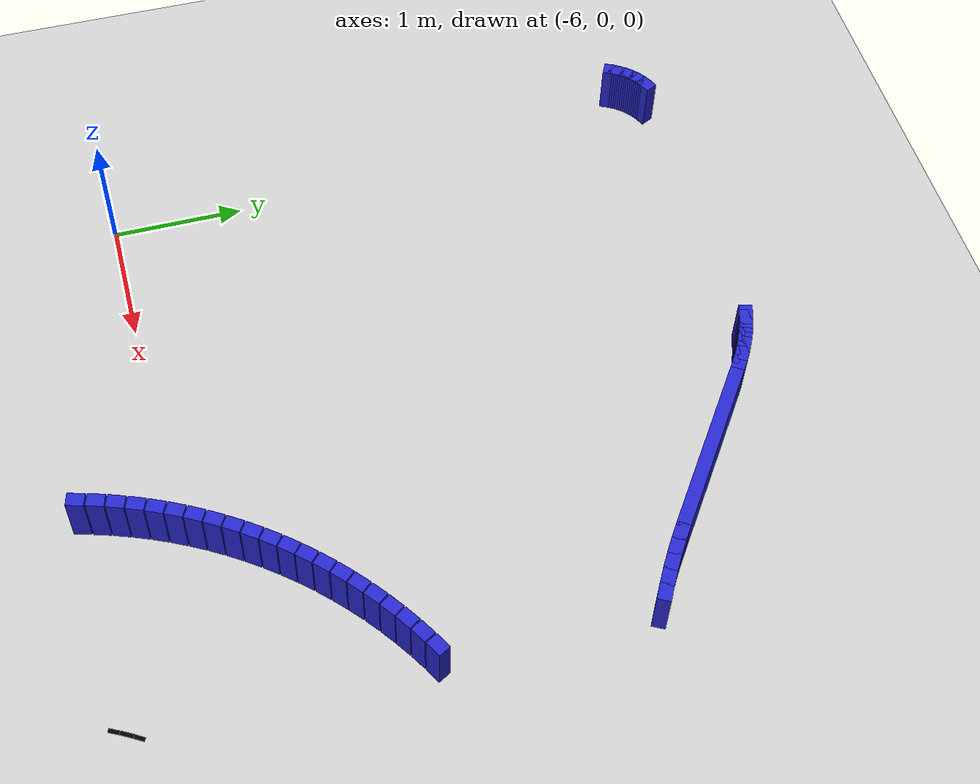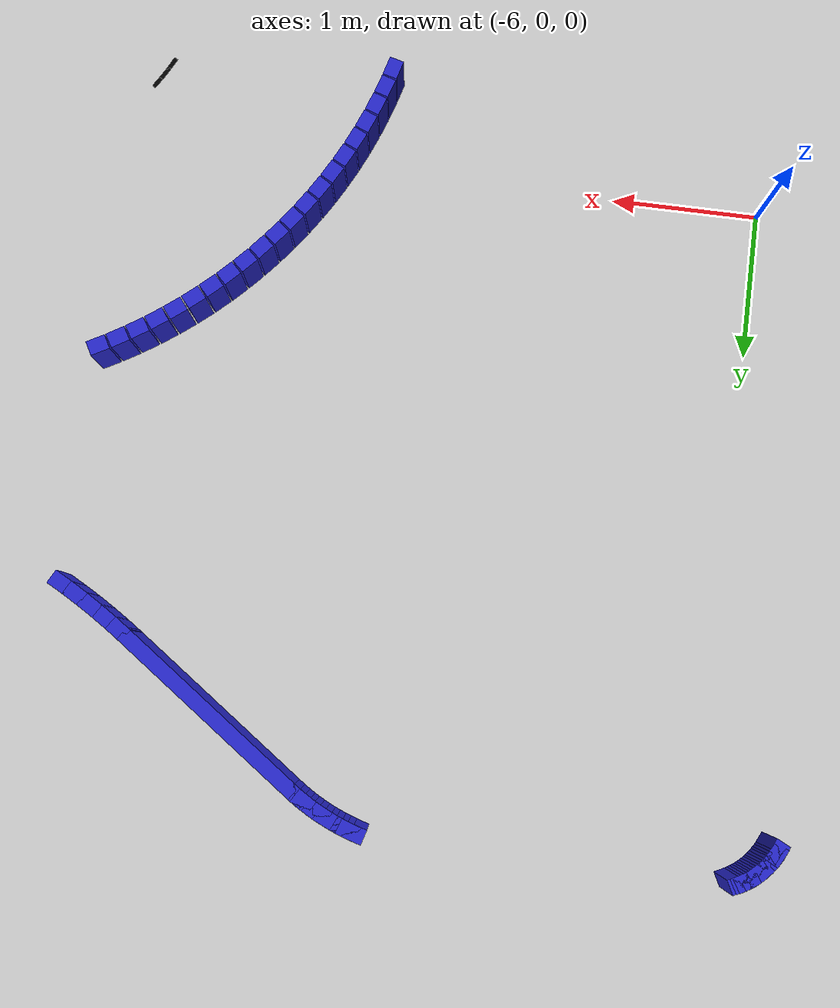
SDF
<sdf version="1.6">
 <world name="new_race_track">
  <include><uri>model://ground_plane</uri></include>
  <include><uri>model://sun</uri></include>
  <model name="race_track">
   <static>true</static>
   <link name="wall_link_87">
    <collision name="c"><geometry><box><size>0.1305 0.1 0.4</size></box></geometry></collision>
    <visual name="v">
     <geometry><box><size>0.1305 0.1 0.4</size></box></geometry>
     <material><ambient>0.15 0.15 0.8 1</ambient><diffuse>0.15 0.15 0.8 1</diffuse></material>
    </visual>
    <pose>-3.3803 -0.6142 0.200 0 0 1.3090</pose>
   </link>
   <link name="wall_link_88">
    <collision name="c"><geometry><box><size>0.1305 0.1 0.4</size></box></geometry></collision>
    <visual name="v">
     <geometry><box><size>0.1305 0.1 0.4</size></box></geometry>
     <material><ambient>0.15 0.15 0.8 1</ambient><diffuse>0.15 0.15 0.8 1</diffuse></material>
    </visual>
    <pose>-3.3411 -0.4789 0.200 0 0 1.2687</pose>
   </link>
   <link name="wall_link_89">
    <collision name="c"><geometry><box><size>0.1305 0.1 0.4</size></box></geometry></collision>
    <visual name="v">
     <geometry><box><size>0.1305 0.1 0.4</size></box></geometry>
     <material><ambient>0.15 0.15 0.8 1</ambient><diffuse>0.15 0.15 0.8 1</diffuse></material>
    </visual>
    <pose>-3.2965 -0.3452 0.200 0 0 1.2284</pose>
   </link>
   <link name="wall_link_90">
    <collision name="c"><geometry><box><size>0.1305 0.1 0.4</size></box></geometry></collision>
    <visual name="v">
     <geometry><box><size>0.1305 0.1 0.4</size></box></geometry>
     <material><ambient>0.15 0.15 0.8 1</ambient><diffuse>0.15 0.15 0.8 1</diffuse></material>
    </visual>
    <pose>-3.2465 -0.2134 0.200 0 0 1.1882</pose>
   </link>
   <link name="wall_link_91">
    <collision name="c"><geometry><box><size>0.1305 0.1 0.4</size></box></geometry></collision>
    <visual name="v">
     <geometry><box><size>0.1305 0.1 0.4</size></box></geometry>
     <material><ambient>0.15 0.15 0.8 1</ambient><diffuse>0.15 0.15 0.8 1</diffuse></material>
    </visual>
    <pose>-3.1913 -0.0837 0.200 0 0 1.1479</pose>
   </link>
   <link name="wall_link_92">
    <collision name="c"><geometry><box><size>0.1305 0.1 0.4</size></box></geometry></collision>
    <visual name="v">
     <geometry><box><size>0.1305 0.1 0.4</size></box></geometry>
     <material><ambient>0.15 0.15 0.8 1</ambient><diffuse>0.15 0.15 0.8 1</diffuse></material>
    </visual>
    <pose>-3.1309 0.0436 0.200 0 0 1.1076</pose>
   </link>
   <link name="wall_link_93">
    <collision name="c"><geometry><box><size>0.1305 0.1 0.4</size></box></geometry></collision>
    <visual name="v">
     <geometry><box><size>0.1305 0.1 0.4</size></box></geometry>
     <material><ambient>0.15 0.15 0.8 1</ambient><diffuse>0.15 0.15 0.8 1</diffuse></material>
    </visual>
    <pose>-3.0654 0.1684 0.200 0 0 1.0673</pose>
   </link>
   <link name="wall_link_94">
    <collision name="c"><geometry><box><size>0.1305 0.1 0.4</size></box></geometry></collision>
    <visual name="v">
     <geometry><box><size>0.1305 0.1 0.4</size></box></geometry>
     <material><ambient>0.15 0.15 0.8 1</ambient><diffuse>0.15 0.15 0.8 1</diffuse></material>
    </visual>
    <pose>-2.9949 0.2905 0.200 0 0 1.0271</pose>
   </link>
   <link name="wall_link_95">
    <collision name="c"><geometry><box><size>0.1305 0.1 0.4</size></box></geometry></collision>
    <visual name="v">
     <geometry><box><size>0.1305 0.1 0.4</size></box></geometry>
     <material><ambient>0.15 0.15 0.8 1</ambient><diffuse>0.15 0.15 0.8 1</diffuse></material>
    </visual>
    <pose>-2.9196 0.4096 0.200 0 0 0.9868</pose>
   </link>
   <link name="wall_link_96">
    <collision name="c"><geometry><box><size>0.1305 0.1 0.4</size></box></geometry></collision>
    <visual name="v">
     <geometry><box><size>0.1305 0.1 0.4</size></box></geometry>
     <material><ambient>0.15 0.15 0.8 1</ambient><diffuse>0.15 0.15 0.8 1</diffuse></material>
    </visual>
    <pose>-2.8395 0.5256 0.200 0 0 0.9465</pose>
   </link>
   <link name="wall_link_97">
    <collision name="c"><geometry><box><size>0.1305 0.1 0.4</size></box></geometry></collision>
    <visual name="v">
     <geometry><box><size>0.1305 0.1 0.4</size></box></geometry>
     <material><ambient>0.15 0.15 0.8 1</ambient><diffuse>0.15 0.15 0.8 1</diffuse></material>
    </visual>
    <pose>-2.7548 0.6383 0.200 0 0 0.9062</pose>
   </link>
   <link name="wall_link_98">
    <collision name="c"><geometry><box><size>0.1305 0.1 0.4</size></box></geometry></collision>
    <visual name="v">
     <geometry><box><size>0.1305 0.1 0.4</size></box></geometry>
     <material><ambient>0.15 0.15 0.8 1</ambient><diffuse>0.15 0.15 0.8 1</diffuse></material>
    </visual>
    <pose>-2.6657 0.7474 0.200 0 0 0.8660</pose>
   </link>
   <link name="wall_link_99">
    <collision name="c"><geometry><box><size>0.1305 0.1 0.4</size></box></geometry></collision>
    <visual name="v">
     <geometry><box><size>0.1305 0.1 0.4</size></box></geometry>
     <material><ambient>0.15 0.15 0.8 1</ambient><diffuse>0.15 0.15 0.8 1</diffuse></material>
    </visual>
    <pose>-2.5722 0.8529 0.200 0 0 0.8257</pose>
   </link>
   <link name="wall_link_100">
    <collision name="c"><geometry><box><size>0.1305 0.1 0.4</size></box></geometry></collision>
    <visual name="v">
     <geometry><box><size>0.1305 0.1 0.4</size></box></geometry>
     <material><ambient>0.15 0.15 0.8 1</ambient><diffuse>0.15 0.15 0.8 1</diffuse></material>
    </visual>
    <pose>-2.4746 0.9546 0.200 0 0 0.7854</pose>
   </link>
   <link name="wall_link_101">
    <collision name="c"><geometry><box><size>0.1305 0.1 0.4</size></box></geometry></collision>
    <visual name="v">
     <geometry><box><size>0.1305 0.1 0.4</size></box></geometry>
     <material><ambient>0.15 0.15 0.8 1</ambient><diffuse>0.15 0.15 0.8 1</diffuse></material>
    </visual>
    <pose>-2.3729 1.0522 0.200 0 0 0.7451</pose>
   </link>
   <link name="wall_link_102">
    <collision name="c"><geometry><box><size>0.1305 0.1 0.4</size></box></geometry></collision>
    <visual name="v">
     <geometry><box><size>0.1305 0.1 0.4</size></box></geometry>
     <material><ambient>0.15 0.15 0.8 1</ambient><diffuse>0.15 0.15 0.8 1</diffuse></material>
    </visual>
    <pose>-2.2674 1.1457 0.200 0 0 0.7048</pose>
   </link>
   <link name="wall_link_103">
    <collision name="c"><geometry><box><size>0.1305 0.1 0.4</size></box></geometry></collision>
    <visual name="v">
     <geometry><box><size>0.1305 0.1 0.4</size></box></geometry>
     <material><ambient>0.15 0.15 0.8 1</ambient><diffuse>0.15 0.15 0.8 1</diffuse></material>
    </visual>
    <pose>-2.1583 1.2348 0.200 0 0 0.6646</pose>
   </link>
   <link name="wall_link_104">
    <collision name="c"><geometry><box><size>0.1305 0.1 0.4</size></box></geometry></collision>
    <visual name="v">
     <geometry><box><size>0.1305 0.1 0.4</size></box></geometry>
     <material><ambient>0.15 0.15 0.8 1</ambient><diffuse>0.15 0.15 0.8 1</diffuse></material>
    </visual>
    <pose>-2.0456 1.3195 0.200 0 0 0.6243</pose>
   </link>
   <link name="wall_link_105">
    <collision name="c"><geometry><box><size>0.1305 0.1 0.4</size></box></geometry></collision>
    <visual name="v">
     <geometry><box><size>0.1305 0.1 0.4</size></box></geometry>
     <material><ambient>0.15 0.15 0.8 1</ambient><diffuse>0.15 0.15 0.8 1</diffuse></material>
    </visual>
    <pose>-1.9296 1.3996 0.200 0 0 0.5840</pose>
   </link>
   <link name="wall_link_106">
    <collision name="c"><geometry><box><size>0.1305 0.1 0.4</size></box></geometry></collision>
    <visual name="v">
     <geometry><box><size>0.1305 0.1 0.4</size></box></geometry>
     <material><ambient>0.15 0.15 0.8 1</ambient><diffuse>0.15 0.15 0.8 1</diffuse></material>
    </visual>
    <pose>-1.8105 1.4749 0.200 0 0 0.5437</pose>
   </link>
   <link name="wall_link_107">
    <collision name="c"><geometry><box><size>0.1305 0.1 0.4</size></box></geometry></collision>
    <visual name="v">
     <geometry><box><size>0.1305 0.1 0.4</size></box></geometry>
     <material><ambient>0.15 0.15 0.8 1</ambient><diffuse>0.15 0.15 0.8 1</diffuse></material>
    </visual>
    <pose>-1.6884 1.5454 0.200 0 0 0.5035</pose>
   </link>
   <link name="wall_link_343">
    <collision name="c"><geometry><box><size>0.1314 0.1 0.4</size></box></geometry></collision>
    <visual name="v">
     <geometry><box><size>0.1314 0.1 0.4</size></box></geometry>
     <material><ambient>0.15 0.15 0.8 1</ambient><diffuse>0.15 0.15 0.8 1</diffuse></material>
    </visual>
    <pose>-1.6935 3.1159 0.200 0 0 2.6529</pose>
   </link>
   <link name="wall_link_344">
    <collision name="c"><geometry><box><size>0.1314 0.1 0.4</size></box></geometry></collision>
    <visual name="v">
     <geometry><box><size>0.1314 0.1 0.4</size></box></geometry>
     <material><ambient>0.15 0.15 0.8 1</ambient><diffuse>0.15 0.15 0.8 1</diffuse></material>
    </visual>
    <pose>-1.8006 3.1748 0.200 0 0 2.6258</pose>
   </link>
   <link name="wall_link_345">
    <collision name="c"><geometry><box><size>0.1314 0.1 0.4</size></box></geometry></collision>
    <visual name="v">
     <geometry><box><size>0.1314 0.1 0.4</size></box></geometry>
     <material><ambient>0.15 0.15 0.8 1</ambient><diffuse>0.15 0.15 0.8 1</diffuse></material>
    </visual>
    <pose>-1.9060 3.2364 0.200 0 0 2.5986</pose>
   </link>
   <link name="wall_link_346">
    <collision name="c"><geometry><box><size>0.1314 0.1 0.4</size></box></geometry></collision>
    <visual name="v">
     <geometry><box><size>0.1314 0.1 0.4</size></box></geometry>
     <material><ambient>0.15 0.15 0.8 1</ambient><diffuse>0.15 0.15 0.8 1</diffuse></material>
    </visual>
    <pose>-2.0098 3.3010 0.200 0 0 2.5715</pose>
   </link>
   <link name="wall_link_347">
    <collision name="c"><geometry><box><size>0.1314 0.1 0.4</size></box></geometry></collision>
    <visual name="v">
     <geometry><box><size>0.1314 0.1 0.4</size></box></geometry>
     <material><ambient>0.15 0.15 0.8 1</ambient><diffuse>0.15 0.15 0.8 1</diffuse></material>
    </visual>
    <pose>-2.1117 3.3683 0.200 0 0 2.5443</pose>
   </link>
   <link name="merged_wall_link_348">
    <pose>-2.7519 3.8157 0.2000 0.0000 0.0000 2.5307</pose>
    <collision name="c"><geometry><box><size>1.4900 0.1000 0.4000</size></box></geometry></collision>
    <visual name="v">
     <geometry><box><size>1.4900 0.1000 0.4000</size></box></geometry>
     <material><ambient>0.15 0.15 0.8 1</ambient><diffuse>0.15 0.15 0.8 1</diffuse></material>
    </visual>
   </link>
   <link name="wall_link_349">
    <collision name="c"><geometry><box><size>0.1333 0.1 0.4</size></box></geometry></collision>
    <visual name="v">
     <geometry><box><size>0.1333 0.1 0.4</size></box></geometry>
     <material><ambient>0.15 0.15 0.8 1</ambient><diffuse>0.15 0.15 0.8 1</diffuse></material>
    </visual>
    <pose>-3.3590 4.2403 0.200 0 0 2.5446</pose>
   </link>
   <link name="wall_link_350">
    <collision name="c"><geometry><box><size>0.1333 0.1 0.4</size></box></geometry></collision>
    <visual name="v">
     <geometry><box><size>0.1333 0.1 0.4</size></box></geometry>
     <material><ambient>0.15 0.15 0.8 1</ambient><diffuse>0.15 0.15 0.8 1</diffuse></material>
    </visual>
    <pose>-3.3938 4.2632 0.200 0 0 2.5724</pose>
   </link>
   <link name="wall_link_351">
    <collision name="c"><geometry><box><size>0.1333 0.1 0.4</size></box></geometry></collision>
    <visual name="v">
     <geometry><box><size>0.1333 0.1 0.4</size></box></geometry>
     <material><ambient>0.15 0.15 0.8 1</ambient><diffuse>0.15 0.15 0.8 1</diffuse></material>
    </visual>
    <pose>-3.4292 4.2852 0.200 0 0 2.6001</pose>
   </link>
   <link name="wall_link_352">
    <collision name="c"><geometry><box><size>0.1333 0.1 0.4</size></box></geometry></collision>
    <visual name="v">
     <geometry><box><size>0.1333 0.1 0.4</size></box></geometry>
     <material><ambient>0.15 0.15 0.8 1</ambient><diffuse>0.15 0.15 0.8 1</diffuse></material>
    </visual>
    <pose>-3.4651 4.3062 0.200 0 0 2.6279</pose>
   </link>
   <link name="wall_link_353">
    <collision name="c"><geometry><box><size>0.1333 0.1 0.4</size></box></geometry></collision>
    <visual name="v">
     <geometry><box><size>0.1333 0.1 0.4</size></box></geometry>
     <material><ambient>0.15 0.15 0.8 1</ambient><diffuse>0.15 0.15 0.8 1</diffuse></material>
    </visual>
    <pose>-3.5017 4.3261 0.200 0 0 2.6557</pose>
   </link>
   <link name="wall_link_354">
    <collision name="c"><geometry><box><size>0.1333 0.1 0.4</size></box></geometry></collision>
    <visual name="v">
     <geometry><box><size>0.1333 0.1 0.4</size></box></geometry>
     <material><ambient>0.15 0.15 0.8 1</ambient><diffuse>0.15 0.15 0.8 1</diffuse></material>
    </visual>
    <pose>-3.5388 4.3450 0.200 0 0 2.6834</pose>
   </link>
   <link name="wall_link_355">
    <collision name="c"><geometry><box><size>0.1333 0.1 0.4</size></box></geometry></collision>
    <visual name="v">
     <geometry><box><size>0.1333 0.1 0.4</size></box></geometry>
     <material><ambient>0.15 0.15 0.8 1</ambient><diffuse>0.15 0.15 0.8 1</diffuse></material>
    </visual>
    <pose>-3.5764 4.3629 0.200 0 0 2.7112</pose>
   </link>
   <link name="wall_link_356">
    <collision name="c"><geometry><box><size>0.1333 0.1 0.4</size></box></geometry></collision>
    <visual name="v">
     <geometry><box><size>0.1333 0.1 0.4</size></box></geometry>
     <material><ambient>0.15 0.15 0.8 1</ambient><diffuse>0.15 0.15 0.8 1</diffuse></material>
    </visual>
    <pose>-3.6144 4.3798 0.200 0 0 2.7390</pose>
   </link>
   <link name="wall_link_357">
    <collision name="c"><geometry><box><size>0.1333 0.1 0.4</size></box></geometry></collision>
    <visual name="v">
     <geometry><box><size>0.1333 0.1 0.4</size></box></geometry>
     <material><ambient>0.15 0.15 0.8 1</ambient><diffuse>0.15 0.15 0.8 1</diffuse></material>
    </visual>
    <pose>-3.6530 4.3956 0.200 0 0 2.7667</pose>
   </link>
   <link name="wall_link_358">
    <collision name="c"><geometry><box><size>0.1333 0.1 0.4</size></box></geometry></collision>
    <visual name="v">
     <geometry><box><size>0.1333 0.1 0.4</size></box></geometry>
     <material><ambient>0.15 0.15 0.8 1</ambient><diffuse>0.15 0.15 0.8 1</diffuse></material>
    </visual>
    <pose>-3.6919 4.4103 0.200 0 0 2.7945</pose>
   </link>
   <link name="wall_link_359">
    <collision name="c"><geometry><box><size>0.1333 0.1 0.4</size></box></geometry></collision>
    <visual name="v">
     <geometry><box><size>0.1333 0.1 0.4</size></box></geometry>
     <material><ambient>0.15 0.15 0.8 1</ambient><diffuse>0.15 0.15 0.8 1</diffuse></material>
    </visual>
    <pose>-3.7313 4.4239 0.200 0 0 2.8223</pose>
   </link>
   <link name="wall_link_360">
    <collision name="c"><geometry><box><size>0.1333 0.1 0.4</size></box></geometry></collision>
    <visual name="v">
     <geometry><box><size>0.1333 0.1 0.4</size></box></geometry>
     <material><ambient>0.15 0.15 0.8 1</ambient><diffuse>0.15 0.15 0.8 1</diffuse></material>
    </visual>
    <pose>-3.7710 4.4364 0.200 0 0 2.8500</pose>
   </link>
   <link name="wall_link_383">
    <collision name="c"><geometry><box><size>0.1305 0.1 0.4</size></box></geometry></collision>
    <visual name="v">
     <geometry><box><size>0.1305 0.1 0.4</size></box></geometry>
     <material><ambient>0.15 0.15 0.8 1</ambient><diffuse>0.15 0.15 0.8 1</diffuse></material>
    </visual>
    <pose>-6.1853 4.4470 0.200 0 0 -2.6784</pose>
   </link>
   <link name="wall_link_384">
    <collision name="c"><geometry><box><size>0.1305 0.1 0.4</size></box></geometry></collision>
    <visual name="v">
     <geometry><box><size>0.1305 0.1 0.4</size></box></geometry>
     <material><ambient>0.15 0.15 0.8 1</ambient><diffuse>0.15 0.15 0.8 1</diffuse></material>
    </visual>
    <pose>-6.2031 4.4376 0.200 0 0 -2.6381</pose>
   </link>
   <link name="wall_link_385">
    <collision name="c"><geometry><box><size>0.1305 0.1 0.4</size></box></geometry></collision>
    <visual name="v">
     <geometry><box><size>0.1305 0.1 0.4</size></box></geometry>
     <material><ambient>0.15 0.15 0.8 1</ambient><diffuse>0.15 0.15 0.8 1</diffuse></material>
    </visual>
    <pose>-6.2205 4.4275 0.200 0 0 -2.5979</pose>
   </link>
   <link name="wall_link_386">
    <collision name="c"><geometry><box><size>0.1305 0.1 0.4</size></box></geometry></collision>
    <visual name="v">
     <geometry><box><size>0.1305 0.1 0.4</size></box></geometry>
     <material><ambient>0.15 0.15 0.8 1</ambient><diffuse>0.15 0.15 0.8 1</diffuse></material>
    </visual>
    <pose>-6.2375 4.4168 0.200 0 0 -2.5576</pose>
   </link>
   <link name="wall_link_387">
    <collision name="c"><geometry><box><size>0.1305 0.1 0.4</size></box></geometry></collision>
    <visual name="v">
     <geometry><box><size>0.1305 0.1 0.4</size></box></geometry>
     <material><ambient>0.15 0.15 0.8 1</ambient><diffuse>0.15 0.15 0.8 1</diffuse></material>
    </visual>
    <pose>-6.2541 4.4054 0.200 0 0 -2.5173</pose>
   </link>
   <link name="wall_link_388">
    <collision name="c"><geometry><box><size>0.1305 0.1 0.4</size></box></geometry></collision>
    <visual name="v">
     <geometry><box><size>0.1305 0.1 0.4</size></box></geometry>
     <material><ambient>0.15 0.15 0.8 1</ambient><diffuse>0.15 0.15 0.8 1</diffuse></material>
    </visual>
    <pose>-6.2702 4.3933 0.200 0 0 -2.4770</pose>
   </link>
   <link name="wall_link_389">
    <collision name="c"><geometry><box><size>0.1305 0.1 0.4</size></box></geometry></collision>
    <visual name="v">
     <geometry><box><size>0.1305 0.1 0.4</size></box></geometry>
     <material><ambient>0.15 0.15 0.8 1</ambient><diffuse>0.15 0.15 0.8 1</diffuse></material>
    </visual>
    <pose>-6.2858 4.3805 0.200 0 0 -2.4367</pose>
   </link>
   <link name="wall_link_390">
    <collision name="c"><geometry><box><size>0.1305 0.1 0.4</size></box></geometry></collision>
    <visual name="v">
     <geometry><box><size>0.1305 0.1 0.4</size></box></geometry>
     <material><ambient>0.15 0.15 0.8 1</ambient><diffuse>0.15 0.15 0.8 1</diffuse></material>
    </visual>
    <pose>-6.3008 4.3672 0.200 0 0 -2.3965</pose>
   </link>
   <link name="wall_link_391">
    <collision name="c"><geometry><box><size>0.1305 0.1 0.4</size></box></geometry></collision>
    <visual name="v">
     <geometry><box><size>0.1305 0.1 0.4</size></box></geometry>
     <material><ambient>0.15 0.15 0.8 1</ambient><diffuse>0.15 0.15 0.8 1</diffuse></material>
    </visual>
    <pose>-6.3153 4.3533 0.200 0 0 -2.3562</pose>
   </link>
   <link name="wall_link_392">
    <collision name="c"><geometry><box><size>0.1305 0.1 0.4</size></box></geometry></collision>
    <visual name="v">
     <geometry><box><size>0.1305 0.1 0.4</size></box></geometry>
     <material><ambient>0.15 0.15 0.8 1</ambient><diffuse>0.15 0.15 0.8 1</diffuse></material>
    </visual>
    <pose>-6.3293 4.3388 0.200 0 0 -2.3159</pose>
   </link>
   <link name="wall_link_393">
    <collision name="c"><geometry><box><size>0.1305 0.1 0.4</size></box></geometry></collision>
    <visual name="v">
     <geometry><box><size>0.1305 0.1 0.4</size></box></geometry>
     <material><ambient>0.15 0.15 0.8 1</ambient><diffuse>0.15 0.15 0.8 1</diffuse></material>
    </visual>
    <pose>-6.3426 4.3237 0.200 0 0 -2.2756</pose>
   </link>
   <link name="wall_link_394">
    <collision name="c"><geometry><box><size>0.1305 0.1 0.4</size></box></geometry></collision>
    <visual name="v">
     <geometry><box><size>0.1305 0.1 0.4</size></box></geometry>
     <material><ambient>0.15 0.15 0.8 1</ambient><diffuse>0.15 0.15 0.8 1</diffuse></material>
    </visual>
    <pose>-6.3553 4.3081 0.200 0 0 -2.2354</pose>
   </link>
   <link name="wall_link_395">
    <collision name="c"><geometry><box><size>0.1305 0.1 0.4</size></box></geometry></collision>
    <visual name="v">
     <geometry><box><size>0.1305 0.1 0.4</size></box></geometry>
     <material><ambient>0.15 0.15 0.8 1</ambient><diffuse>0.15 0.15 0.8 1</diffuse></material>
    </visual>
    <pose>-6.3674 4.2920 0.200 0 0 -2.1951</pose>
   </link>
   <link name="wall_link_396">
    <collision name="c"><geometry><box><size>0.1305 0.1 0.4</size></box></geometry></collision>
    <visual name="v">
     <geometry><box><size>0.1305 0.1 0.4</size></box></geometry>
     <material><ambient>0.15 0.15 0.8 1</ambient><diffuse>0.15 0.15 0.8 1</diffuse></material>
    </visual>
    <pose>-6.3789 4.2755 0.200 0 0 -2.1548</pose>
   </link>
   <link name="wall_link_397">
    <collision name="c"><geometry><box><size>0.1305 0.1 0.4</size></box></geometry></collision>
    <visual name="v">
     <geometry><box><size>0.1305 0.1 0.4</size></box></geometry>
     <material><ambient>0.15 0.15 0.8 1</ambient><diffuse>0.15 0.15 0.8 1</diffuse></material>
    </visual>
    <pose>-6.3896 4.2585 0.200 0 0 -2.1145</pose>
   </link>
   <link name="wall_link_398">
    <collision name="c"><geometry><box><size>0.1305 0.1 0.4</size></box></geometry></collision>
    <visual name="v">
     <geometry><box><size>0.1305 0.1 0.4</size></box></geometry>
     <material><ambient>0.15 0.15 0.8 1</ambient><diffuse>0.15 0.15 0.8 1</diffuse></material>
    </visual>
    <pose>-6.3997 4.2410 0.200 0 0 -2.0743</pose>
   </link>
   <link name="wall_link_399">
    <collision name="c"><geometry><box><size>0.1305 0.1 0.4</size></box></geometry></collision>
    <visual name="v">
     <geometry><box><size>0.1305 0.1 0.4</size></box></geometry>
     <material><ambient>0.15 0.15 0.8 1</ambient><diffuse>0.15 0.15 0.8 1</diffuse></material>
    </visual>
    <pose>-6.4090 4.2232 0.200 0 0 -2.0340</pose>
   </link>
   <link name="line_link_1019">
    <visual name="v">
     <geometry><box><size>0.1005 0.03 0.002</size></box></geometry>
     <material><ambient>0 0 0 1</ambient><diffuse>0 0 0 1</diffuse></material>
    </visual>
    <pose>-1.7889 -0.6266 0.002 0 0 1.1076</pose>
   </link>
   <link name="line_link_1020">
    <visual name="v">
     <geometry><box><size>0.1005 0.03 0.002</size></box></geometry>
     <material><ambient>0 0 0 1</ambient><diffuse>0 0 0 1</diffuse></material>
    </visual>
    <pose>-1.7515 -0.5553 0.002 0 0 1.0673</pose>
   </link>
   <link name="line_link_1021">
    <visual name="v">
     <geometry><box><size>0.1005 0.03 0.002</size></box></geometry>
     <material><ambient>0 0 0 1</ambient><diffuse>0 0 0 1</diffuse></material>
    </visual>
    <pose>-1.7112 -0.4855 0.002 0 0 1.0271</pose>
   </link>
  </model>
 </world>
</sdf>
